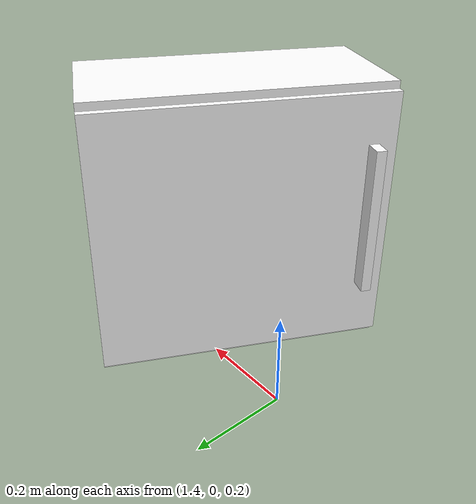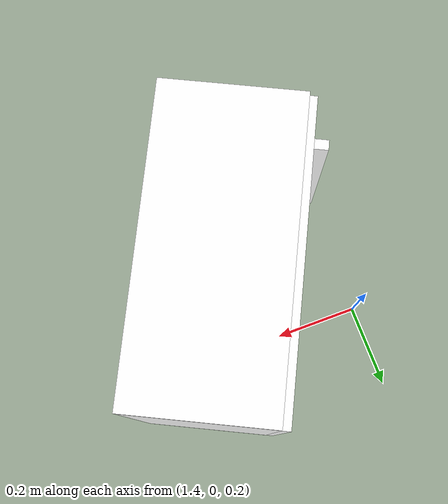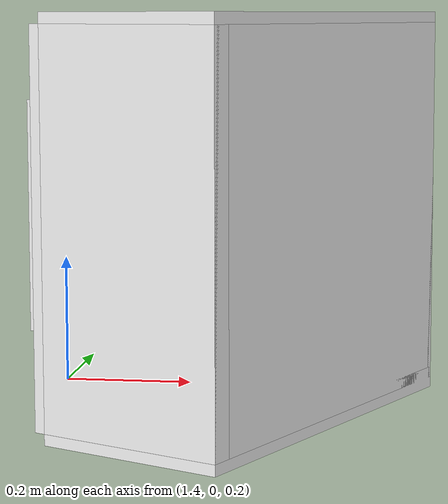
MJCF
<mujoco model="cabinet">
    <compiler angle="radian" eulerseq='zxy' />
    <option gravity = "0 0 0" />
    <option>
        <flag contact = "disable"/>
    </option>
    <statistic	extent="1.0" center="0.0 0.0 0.0"/>
    <visual>
        <map fogstart="3" fogend="5" force="0.1" znear=" 0.100000 " zfar=" 12.000000 "/>
    </visual>
    <size njmax="500" nconmax="100" />
    <actuator>
        <velocity joint="bottom_left_hinge" name="viva_revolution" kv='10'></velocity>
    </actuator>
    <asset>
        <texture builtin="flat" name="tabletex" height="32" width="32" rgb1="1 1 1" type="cube"></texture>
        <texture builtin="flat" name="objtex" height="32" width="32" rgb1="1 1 1" type="cube"></texture>
        <texture builtin="flat" name="handletex" height="32" width="32" rgb1="1 1 1" type="cube"></texture>
        <texture builtin="flat" name="wallpaper" height="32" width="32" rgb1="1 1 1" type="cube"></texture>
        <material name="geomTable" shininess="0.03" specular="0.75" texture="tabletex"></material>
        <material name="geomObj" shininess="0.03" specular="0.75" texture="objtex"></material>
        <material name="geomHandle" shininess="0.03" specular="0.75" texture="handletex"></material>
        <material name="bg" shininess="0.03" specular="0.75" texture="wallpaper"></material>
    </asset>
    <worldbody>
            <body name="cabinet_bottom" pos= " 1.713317 -0.127455 0.199886 "  quat= " 0.226543 0.000000 0.000000 0.974001" >
                <inertial pos="0 0 0" mass="1" diaginertia="1 1 1" />
                <geom size= " 0.144905 0.313167 0.016530 "  type="box" material="geomObj" name="b"/>
                <body name="cabinet_left" pos= " 0.000000 -0.296638 0.286749 " >
                    <inertial pos="0 0 0" mass="1" diaginertia="1 1 1" />
                    <geom size= " 0.144905 0.016530 0.286749 "  type="box" material="geomObj" name="c" />
                </body>
                <body name="cabinet_right" pos= " 0.000000 0.296638 0.286749 " >
                    <inertial pos="0 0 0" mass="1" diaginertia="1 1 1" />
                    <geom size= " 0.144905 0.016530 0.286749 "  type="box" material="geomObj" name="d" />
                </body>
                <body name="cabinet_top" pos= " 0.000000 0.000000 0.573499 " >
                    <inertial pos="0 0 0" mass="1" diaginertia="1 1 1" />
                    <geom size= " 0.144905 0.313167 0.016530 "  type="box" material="geomObj" name="e"/>
                </body>
                <body name="cabinet_back" pos= " -0.128375 0.000000 0.286749 "  >
                    <inertial pos="0 0 0" mass="1" diaginertia="1 1 1" />
                    <geom size= " 0.016530 0.313167 0.286749 "  type="box" material="geomObj" name="f" />
                </body>
                <body name="cabinet_left_hinge" pos= " 0.144905 -0.313167 0.286749 " >
                    <inertial pos= " 0.000000 0.313167 0.000000 "  mass="1" diaginertia="1 1 1" />
                    <joint name="bottom_left_hinge" type="hinge" pos="0 0 0" axis="0 0 1" limited="true" range= "-2.3 0"  />
                    <geom size= " 0.016530 0.313167 0.286749 "  pos= " 0.000000 0.313167 0.000000 "  type="box" material="geomObj" name="g"/>
                    <body name="handle_link" pos= " 0.036226 0.576406 0.014668 " >
                        <inertial pos="0 0 0" mass="1" diaginertia="1 1 1" />
                        <geom size= " 0.018914 0.011020 0.165362 "  type="box" material="geomHandle" name="h"/>
                    </body>
                </body>
            </body>
        <body name="external_camera_body_0" pos="0.0 0 0.00">
            <camera euler="-1.57 1.57 0.0" fovy=" 54.280851 " name="external_camera_0" pos="0.0 0 0"></camera>
            <inertial pos= " 0.00 0.0 0.000000 " mass="1" diaginertia="1 1 1" />
            <joint name="cam_j" pos="0.0 0 0" axis = "1 0 0" type="free" />
        </body>
    </worldbody>
</mujoco>
